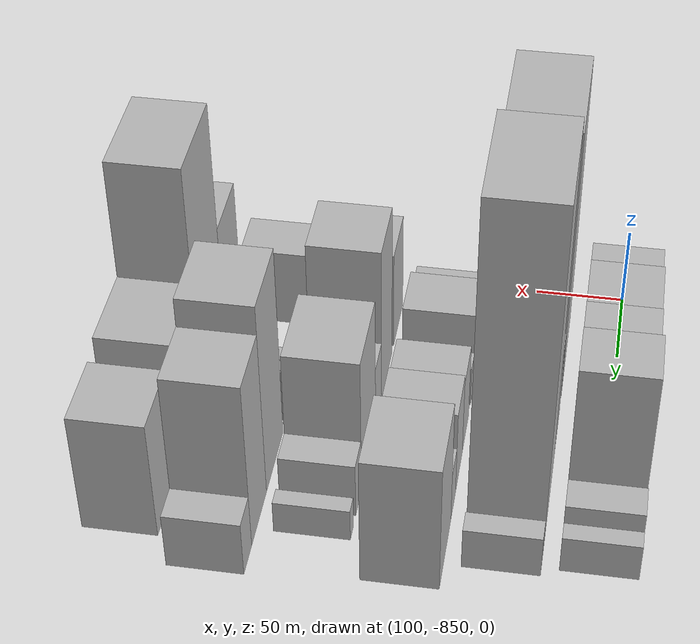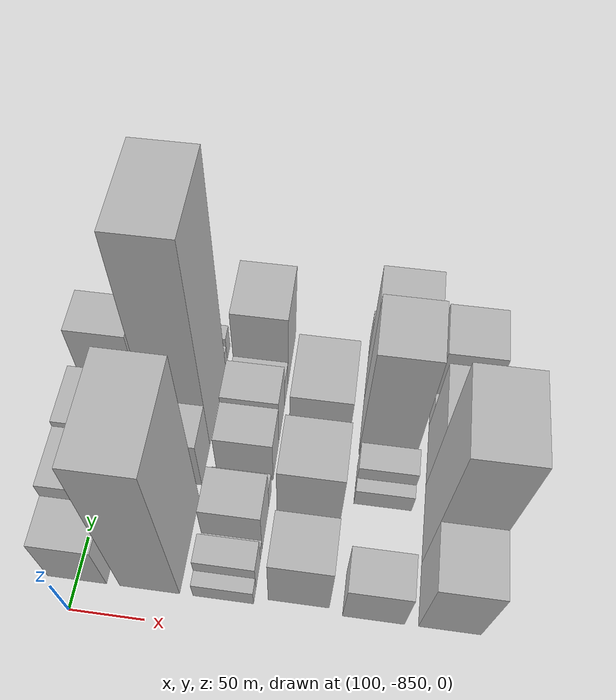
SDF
<sdf version="1.6">
 <world name="default">
  <model name="building_1">
   <static>1</static>
   <pose>100.0000 -813.4365 0 0.000000 0.000000 0.000000</pose>
   <link name="link">
    <pose>0 0 28.50 0 0 0</pose>
    <collision name="collision"><geometry><box><size>40.0000 33.1270 57.0000</size></box></geometry></collision>
    <visual name="visual">
     <cast_shadows>0</cast_shadows>
     <geometry><box><size>40.0000 33.1270 57.0000</size></box></geometry>
     <material>
      <script>
       <uri>model://HANNAS_wall/materials/scripts</uri>
       <uri>model://HANNAS_wall/materials/textures</uri>
       <name>vrc/HANNAS_wall</name>
      </script>
     </material>
    </visual>
   </link>
  </model>
  <model name="building_2">
   <static>1</static>
   <pose>100.0000 -776.1654 0 0.000000 0.000000 0.000000</pose>
   <link name="link">
    <pose>0 0 36.00 0 0 0</pose>
    <collision name="collision"><geometry><box><size>40.0000 41.4152 72.0000</size></box></geometry></collision>
    <visual name="visual">
     <cast_shadows>0</cast_shadows>
     <geometry><box><size>40.0000 41.4152 72.0000</size></box></geometry>
     <material>
      <script>
       <uri>model://HANNAS_wall/materials/scripts</uri>
       <uri>model://HANNAS_wall/materials/textures</uri>
       <name>vrc/HANNAS_wall</name>
      </script>
     </material>
    </visual>
   </link>
  </model>
  <model name="building_3">
   <static>1</static>
   <pose>100.0000 -734.5944 0 0.000000 0.000000 0.000000</pose>
   <link name="link">
    <pose>0 0 39.00 0 0 0</pose>
    <collision name="collision"><geometry><box><size>40.0000 41.7268 78.0000</size></box></geometry></collision>
    <visual name="visual">
     <cast_shadows>0</cast_shadows>
     <geometry><box><size>40.0000 41.7268 78.0000</size></box></geometry>
     <material>
      <script>
       <uri>model://HANNAS_wall/materials/scripts</uri>
       <uri>model://HANNAS_wall/materials/textures</uri>
       <name>vrc/HANNAS_wall</name>
      </script>
     </material>
    </visual>
   </link>
  </model>
  <model name="building_4">
   <static>1</static>
   <pose>100.0000 -688.7372 0 0.000000 0.000000 0.000000</pose>
   <link name="link">
    <pose>0 0 52.50 0 0 0</pose>
    <collision name="collision"><geometry><box><size>40.0000 31.9876 105.0000</size></box></geometry></collision>
    <visual name="visual">
     <cast_shadows>0</cast_shadows>
     <geometry><box><size>40.0000 31.9876 105.0000</size></box></geometry>
     <material>
      <script>
       <uri>model://HANNAS_wall/materials/scripts</uri>
       <uri>model://HANNAS_wall/materials/textures</uri>
       <name>vrc/HANNAS_wall</name>
      </script>
     </material>
    </visual>
   </link>
  </model>
  <model name="building_5">
   <static>1</static>
   <pose>100.0000 -657.4746 0 0.000000 0.000000 0.000000</pose>
   <link name="link">
    <pose>0 0 18.00 0 0 0</pose>
    <collision name="collision"><geometry><box><size>40.0000 18.5376 36.0000</size></box></geometry></collision>
    <visual name="visual">
     <cast_shadows>0</cast_shadows>
     <geometry><box><size>40.0000 18.5376 36.0000</size></box></geometry>
     <material>
      <script>
       <uri>model://HANNAS_wall/materials/scripts</uri>
       <uri>model://HANNAS_wall/materials/textures</uri>
       <name>vrc/HANNAS_wall</name>
      </script>
     </material>
    </visual>
   </link>
  </model>
  <model name="building_6">
   <static>1</static>
   <pose>100.0000 -643.0479 0 0.000000 0.000000 0.000000</pose>
   <link name="link">
    <pose>0 0 12.00 0 0 0</pose>
    <collision name="collision"><geometry><box><size>40.0000 10.3160 24.0000</size></box></geometry></collision>
    <visual name="visual">
     <cast_shadows>0</cast_shadows>
     <geometry><box><size>40.0000 10.3160 24.0000</size></box></geometry>
     <material>
      <script>
       <uri>model://HANNAS_wall/materials/scripts</uri>
       <uri>model://HANNAS_wall/materials/textures</uri>
       <name>vrc/HANNAS_wall</name>
      </script>
     </material>
    </visual>
   </link>
  </model>
  <model name="building_47">
   <static>1</static>
   <pose>149.0000 -795.7244 0 0.000000 0.000000 0.000000</pose>
   <link name="link">
    <pose>0 0 90.00 0 0 0</pose>
    <collision name="collision"><geometry><box><size>40.0000 68.5512 180.0000</size></box></geometry></collision>
    <visual name="visual">
     <cast_shadows>0</cast_shadows>
     <geometry><box><size>40.0000 68.5512 180.0000</size></box></geometry>
     <material>
      <script>
       <uri>model://HANNAS_wall/materials/scripts</uri>
       <uri>model://HANNAS_wall/materials/textures</uri>
       <name>vrc/HANNAS_wall</name>
      </script>
     </material>
    </visual>
   </link>
  </model>
  <model name="building_48">
   <static>1</static>
   <pose>149.0000 -735.6242 0 0.000000 0.000000 0.000000</pose>
   <link name="link">
    <pose>0 0 28.50 0 0 0</pose>
    <collision name="collision"><geometry><box><size>40.0000 31.6492 57.0000</size></box></geometry></collision>
    <visual name="visual">
     <cast_shadows>0</cast_shadows>
     <geometry><box><size>40.0000 31.6492 57.0000</size></box></geometry>
     <material>
      <script>
       <uri>model://HANNAS_wall/materials/scripts</uri>
       <uri>model://HANNAS_wall/materials/textures</uri>
       <name>vrc/HANNAS_wall</name>
      </script>
     </material>
    </visual>
   </link>
  </model>
  <model name="building_49">
   <static>1</static>
   <pose>149.0000 -686.6204 0 0.000000 0.000000 0.000000</pose>
   <link name="link">
    <pose>0 0 109.50 0 0 0</pose>
    <collision name="collision"><geometry><box><size>40.0000 66.3585 219.0000</size></box></geometry></collision>
    <visual name="visual">
     <cast_shadows>0</cast_shadows>
     <geometry><box><size>40.0000 66.3585 219.0000</size></box></geometry>
     <material>
      <script>
       <uri>model://HANNAS_wall/materials/scripts</uri>
       <uri>model://HANNAS_wall/materials/textures</uri>
       <name>vrc/HANNAS_wall</name>
      </script>
     </material>
    </visual>
   </link>
  </model>
  <model name="building_50">
   <static>1</static>
   <pose>149.0000 -649.4262 0 0.000000 0.000000 0.000000</pose>
   <link name="link">
    <pose>0 0 9.00 0 0 0</pose>
    <collision name="collision"><geometry><box><size>40.0000 8.0300 18.0000</size></box></geometry></collision>
    <visual name="visual">
     <cast_shadows>0</cast_shadows>
     <geometry><box><size>40.0000 8.0300 18.0000</size></box></geometry>
     <material>
      <script>
       <uri>model://HANNAS_wall/materials/scripts</uri>
       <uri>model://HANNAS_wall/materials/textures</uri>
       <name>vrc/HANNAS_wall</name>
      </script>
     </material>
    </visual>
   </link>
  </model>
  <model name="building_51">
   <static>1</static>
   <pose>149.0000 -639.1264 0 0.000000 0.000000 0.000000</pose>
   <link name="link">
    <pose>0 0 13.50 0 0 0</pose>
    <collision name="collision"><geometry><box><size>40.0000 12.5696 27.0000</size></box></geometry></collision>
    <visual name="visual">
     <cast_shadows>0</cast_shadows>
     <geometry><box><size>40.0000 12.5696 27.0000</size></box></geometry>
     <material>
      <script>
       <uri>model://HANNAS_wall/materials/scripts</uri>
       <uri>model://HANNAS_wall/materials/textures</uri>
       <name>vrc/HANNAS_wall</name>
      </script>
     </material>
    </visual>
   </link>
  </model>
  <model name="building_97">
   <static>1</static>
   <pose>198.0000 -824.8740 0 0.000000 0.000000 0.000000</pose>
   <link name="link">
    <pose>0 0 10.50 0 0 0</pose>
    <collision name="collision"><geometry><box><size>40.0000 10.2519 21.0000</size></box></geometry></collision>
    <visual name="visual">
     <cast_shadows>0</cast_shadows>
     <geometry><box><size>40.0000 10.2519 21.0000</size></box></geometry>
     <material>
      <script>
       <uri>model://HANNAS_wall/materials/scripts</uri>
       <uri>model://HANNAS_wall/materials/textures</uri>
       <name>vrc/HANNAS_wall</name>
      </script>
     </material>
    </visual>
   </link>
  </model>
  <model name="building_98">
   <static>1</static>
   <pose>198.0000 -810.1202 0 0.000000 0.000000 0.000000</pose>
   <link name="link">
    <pose>0 0 18.00 0 0 0</pose>
    <collision name="collision"><geometry><box><size>40.0000 19.2558 36.0000</size></box></geometry></collision>
    <visual name="visual">
     <cast_shadows>0</cast_shadows>
     <geometry><box><size>40.0000 19.2558 36.0000</size></box></geometry>
     <material>
      <script>
       <uri>model://HANNAS_wall/materials/scripts</uri>
       <uri>model://HANNAS_wall/materials/textures</uri>
       <name>vrc/HANNAS_wall</name>
      </script>
     </material>
    </visual>
   </link>
  </model>
  <model name="building_99">
   <static>1</static>
   <pose>198.0000 -796.7460 0 0.000000 0.000000 0.000000</pose>
   <link name="link">
    <pose>0 0 9.00 0 0 0</pose>
    <collision name="collision"><geometry><box><size>40.0000 7.4927 18.0000</size></box></geometry></collision>
    <visual name="visual">
     <cast_shadows>0</cast_shadows>
     <geometry><box><size>40.0000 7.4927 18.0000</size></box></geometry>
     <material>
      <script>
       <uri>model://HANNAS_wall/materials/scripts</uri>
       <uri>model://HANNAS_wall/materials/textures</uri>
       <name>vrc/HANNAS_wall</name>
      </script>
     </material>
    </visual>
   </link>
  </model>
  <model name="building_100">
   <static>1</static>
   <pose>198.0000 -777.3658 0 0.000000 0.000000 0.000000</pose>
   <link name="link">
    <pose>0 0 27.00 0 0 0</pose>
    <collision name="collision"><geometry><box><size>40.0000 31.2675 54.0000</size></box></geometry></collision>
    <visual name="visual">
     <cast_shadows>0</cast_shadows>
     <geometry><box><size>40.0000 31.2675 54.0000</size></box></geometry>
     <material>
      <script>
       <uri>model://HANNAS_wall/materials/scripts</uri>
       <uri>model://HANNAS_wall/materials/textures</uri>
       <name>vrc/HANNAS_wall</name>
      </script>
     </material>
    </visual>
   </link>
  </model>
  <model name="building_101">
   <static>1</static>
   <pose>198.0000 -755.3200 0 0.000000 0.000000 0.000000</pose>
   <link name="link">
    <pose>0 0 13.50 0 0 0</pose>
    <collision name="collision"><geometry><box><size>40.0000 12.8241 27.0000</size></box></geometry></collision>
    <visual name="visual">
     <cast_shadows>0</cast_shadows>
     <geometry><box><size>40.0000 12.8241 27.0000</size></box></geometry>
     <material>
      <script>
       <uri>model://HANNAS_wall/materials/scripts</uri>
       <uri>model://HANNAS_wall/materials/textures</uri>
       <name>vrc/HANNAS_wall</name>
      </script>
     </material>
    </visual>
   </link>
  </model>
  <model name="building_102">
   <static>1</static>
   <pose>198.0000 -726.4056 0 0.000000 0.000000 0.000000</pose>
   <link name="link">
    <pose>0 0 25.50 0 0 0</pose>
    <collision name="collision"><geometry><box><size>40.0000 29.0049 51.0000</size></box></geometry></collision>
    <visual name="visual">
     <cast_shadows>0</cast_shadows>
     <geometry><box><size>40.0000 29.0049 51.0000</size></box></geometry>
     <material>
      <script>
       <uri>model://HANNAS_wall/materials/scripts</uri>
       <uri>model://HANNAS_wall/materials/textures</uri>
       <name>vrc/HANNAS_wall</name>
      </script>
     </material>
    </visual>
   </link>
  </model>
  <model name="building_103">
   <static>1</static>
   <pose>198.0000 -697.0899 0 0.000000 0.000000 0.000000</pose>
   <link name="link">
    <pose>0 0 28.50 0 0 0</pose>
    <collision name="collision"><geometry><box><size>40.0000 29.6264 57.0000</size></box></geometry></collision>
    <visual name="visual">
     <cast_shadows>0</cast_shadows>
     <geometry><box><size>40.0000 29.6264 57.0000</size></box></geometry>
     <material>
      <script>
       <uri>model://HANNAS_wall/materials/scripts</uri>
       <uri>model://HANNAS_wall/materials/textures</uri>
       <name>vrc/HANNAS_wall</name>
      </script>
     </material>
    </visual>
   </link>
  </model>
  <model name="building_104">
   <static>1</static>
   <pose>198.0000 -672.5889 0 0.000000 0.000000 0.000000</pose>
   <link name="link">
    <pose>0 0 16.50 0 0 0</pose>
    <collision name="collision"><geometry><box><size>40.0000 19.3755 33.0000</size></box></geometry></collision>
    <visual name="visual">
     <cast_shadows>0</cast_shadows>
     <geometry><box><size>40.0000 19.3755 33.0000</size></box></geometry>
     <material>
      <script>
       <uri>model://HANNAS_wall/materials/scripts</uri>
       <uri>model://HANNAS_wall/materials/textures</uri>
       <name>vrc/HANNAS_wall</name>
      </script>
     </material>
    </visual>
   </link>
  </model>
  <model name="building_105">
   <static>1</static>
   <pose>198.0000 -639.7489 0 0.000000 0.000000 0.000000</pose>
   <link name="link">
    <pose>0 0 42.00 0 0 0</pose>
    <collision name="collision"><geometry><box><size>40.0000 46.3046 84.0000</size></box></geometry></collision>
    <visual name="visual">
     <cast_shadows>0</cast_shadows>
     <geometry><box><size>40.0000 46.3046 84.0000</size></box></geometry>
     <material>
      <script>
       <uri>model://HANNAS_wall/materials/scripts</uri>
       <uri>model://HANNAS_wall/materials/textures</uri>
       <name>vrc/HANNAS_wall</name>
      </script>
     </material>
    </visual>
   </link>
  </model>
  <model name="building_149">
   <static>1</static>
   <pose>247.0000 -808.0110 0 0.000000 0.000000 0.000000</pose>
   <link name="link">
    <pose>0 0 33.00 0 0 0</pose>
    <collision name="collision"><geometry><box><size>40.0000 35.9780 66.0000</size></box></geometry></collision>
    <visual name="visual">
     <cast_shadows>0</cast_shadows>
     <geometry><box><size>40.0000 35.9780 66.0000</size></box></geometry>
     <material>
      <script>
       <uri>model://HANNAS_wall/materials/scripts</uri>
       <uri>model://HANNAS_wall/materials/textures</uri>
       <name>vrc/HANNAS_wall</name>
      </script>
     </material>
    </visual>
   </link>
  </model>
  <model name="building_150">
   <static>1</static>
   <pose>247.0000 -764.7420 0 0.000000 0.000000 0.000000</pose>
   <link name="link">
    <pose>0 0 52.50 0 0 0</pose>
    <collision name="collision"><geometry><box><size>40.0000 38.5599 105.0000</size></box></geometry></collision>
    <visual name="visual">
     <cast_shadows>0</cast_shadows>
     <geometry><box><size>40.0000 38.5599 105.0000</size></box></geometry>
     <material>
      <script>
       <uri>model://HANNAS_wall/materials/scripts</uri>
       <uri>model://HANNAS_wall/materials/textures</uri>
       <name>vrc/HANNAS_wall</name>
      </script>
     </material>
    </visual>
   </link>
  </model>
  <model name="building_151">
   <static>1</static>
   <pose>247.0000 -734.9108 0 0.000000 0.000000 0.000000</pose>
   <link name="link">
    <pose>0 0 21.00 0 0 0</pose>
    <collision name="collision"><geometry><box><size>40.0000 21.1025 42.0000</size></box></geometry></collision>
    <visual name="visual">
     <cast_shadows>0</cast_shadows>
     <geometry><box><size>40.0000 21.1025 42.0000</size></box></geometry>
     <material>
      <script>
       <uri>model://HANNAS_wall/materials/scripts</uri>
       <uri>model://HANNAS_wall/materials/textures</uri>
       <name>vrc/HANNAS_wall</name>
      </script>
     </material>
    </visual>
   </link>
  </model>
  <model name="building_152">
   <static>1</static>
   <pose>247.0000 -700.5825 0 0.000000 0.000000 0.000000</pose>
   <link name="link">
    <pose>0 0 45.00 0 0 0</pose>
    <collision name="collision"><geometry><box><size>40.0000 47.5540 90.0000</size></box></geometry></collision>
    <visual name="visual">
     <cast_shadows>0</cast_shadows>
     <geometry><box><size>40.0000 47.5540 90.0000</size></box></geometry>
     <material>
      <script>
       <uri>model://HANNAS_wall/materials/scripts</uri>
       <uri>model://HANNAS_wall/materials/textures</uri>
       <name>vrc/HANNAS_wall</name>
      </script>
     </material>
    </visual>
   </link>
  </model>
  <model name="building_153">
   <static>1</static>
   <pose>247.0000 -667.6873 0 0.000000 0.000000 0.000000</pose>
   <link name="link">
    <pose>0 0 18.00 0 0 0</pose>
    <collision name="collision"><geometry><box><size>40.0000 18.2366 36.0000</size></box></geometry></collision>
    <visual name="visual">
     <cast_shadows>0</cast_shadows>
     <geometry><box><size>40.0000 18.2366 36.0000</size></box></geometry>
     <material>
      <script>
       <uri>model://HANNAS_wall/materials/scripts</uri>
       <uri>model://HANNAS_wall/materials/textures</uri>
       <name>vrc/HANNAS_wall</name>
      </script>
     </material>
    </visual>
   </link>
  </model>
  <model name="building_154">
   <static>1</static>
   <pose>247.0000 -646.6840 0 0.000000 0.000000 0.000000</pose>
   <link name="link">
    <pose>0 0 10.50 0 0 0</pose>
    <collision name="collision"><geometry><box><size>40.0000 9.7700 21.0000</size></box></geometry></collision>
    <visual name="visual">
     <cast_shadows>0</cast_shadows>
     <geometry><box><size>40.0000 9.7700 21.0000</size></box></geometry>
     <material>
      <script>
       <uri>model://HANNAS_wall/materials/scripts</uri>
       <uri>model://HANNAS_wall/materials/textures</uri>
       <name>vrc/HANNAS_wall</name>
      </script>
     </material>
    </visual>
   </link>
  </model>
  <model name="building_200">
   <static>1</static>
   <pose>296.0000 -815.3998 0 0.000000 0.000000 0.000000</pose>
   <link name="link">
    <pose>0 0 25.50 0 0 0</pose>
    <collision name="collision"><geometry><box><size>40.0000 29.2003 51.0000</size></box></geometry></collision>
    <visual name="visual">
     <cast_shadows>0</cast_shadows>
     <geometry><box><size>40.0000 29.2003 51.0000</size></box></geometry>
     <material>
      <script>
       <uri>model://HANNAS_wall/materials/scripts</uri>
       <uri>model://HANNAS_wall/materials/textures</uri>
       <name>vrc/HANNAS_wall</name>
      </script>
     </material>
    </visual>
   </link>
  </model>
  <model name="building_201">
   <static>1</static>
   <pose>296.0000 -745.9321 0 0.000000 0.000000 0.000000</pose>
   <link name="link">
    <pose>0 0 10.50 0 0 0</pose>
    <collision name="collision"><geometry><box><size>40.0000 9.9117 21.0000</size></box></geometry></collision>
    <visual name="visual">
     <cast_shadows>0</cast_shadows>
     <geometry><box><size>40.0000 9.9117 21.0000</size></box></geometry>
     <material>
      <script>
       <uri>model://HANNAS_wall/materials/scripts</uri>
       <uri>model://HANNAS_wall/materials/textures</uri>
       <name>vrc/HANNAS_wall</name>
      </script>
     </material>
    </visual>
   </link>
  </model>
  <model name="building_202">
   <static>1</static>
   <pose>296.0000 -731.1963 0 0.000000 0.000000 0.000000</pose>
   <link name="link">
    <pose>0 0 18.00 0 0 0</pose>
    <collision name="collision"><geometry><box><size>40.0000 19.5598 36.0000</size></box></geometry></collision>
    <visual name="visual">
     <cast_shadows>0</cast_shadows>
     <geometry><box><size>40.0000 19.5598 36.0000</size></box></geometry>
     <material>
      <script>
       <uri>model://HANNAS_wall/materials/scripts</uri>
       <uri>model://HANNAS_wall/materials/textures</uri>
       <name>vrc/HANNAS_wall</name>
      </script>
     </material>
    </visual>
   </link>
  </model>
  <model name="building_203">
   <static>1</static>
   <pose>296.0000 -690.1163 0 0.000000 0.000000 0.000000</pose>
   <link name="link">
    <pose>0 0 64.50 0 0 0</pose>
    <collision name="collision"><geometry><box><size>40.0000 44.6002 129.0000</size></box></geometry></collision>
    <visual name="visual">
     <cast_shadows>0</cast_shadows>
     <geometry><box><size>40.0000 44.6002 129.0000</size></box></geometry>
     <material>
      <script>
       <uri>model://HANNAS_wall/materials/scripts</uri>
       <uri>model://HANNAS_wall/materials/textures</uri>
       <name>vrc/HANNAS_wall</name>
      </script>
     </material>
    </visual>
   </link>
  </model>
  <model name="building_204">
   <static>1</static>
   <pose>296.0000 -649.0827 0 0.000000 0.000000 0.000000</pose>
   <link name="link">
    <pose>0 0 55.50 0 0 0</pose>
    <collision name="collision"><geometry><box><size>40.0000 37.4670 111.0000</size></box></geometry></collision>
    <visual name="visual">
     <cast_shadows>0</cast_shadows>
     <geometry><box><size>40.0000 37.4670 111.0000</size></box></geometry>
     <material>
      <script>
       <uri>model://HANNAS_wall/materials/scripts</uri>
       <uri>model://HANNAS_wall/materials/textures</uri>
       <name>vrc/HANNAS_wall</name>
      </script>
     </material>
    </visual>
   </link>
  </model>
  <model name="building_205">
   <static>1</static>
   <pose>296.0000 -620.8200 0 0.000000 0.000000 0.000000</pose>
   <link name="link">
    <pose>0 0 18.00 0 0 0</pose>
    <collision name="collision"><geometry><box><size>40.0000 19.0584 36.0000</size></box></geometry></collision>
    <visual name="visual">
     <cast_shadows>0</cast_shadows>
     <geometry><box><size>40.0000 19.0584 36.0000</size></box></geometry>
     <material>
      <script>
       <uri>model://HANNAS_wall/materials/scripts</uri>
       <uri>model://HANNAS_wall/materials/textures</uri>
       <name>vrc/HANNAS_wall</name>
      </script>
     </material>
    </visual>
   </link>
  </model>
  <model name="building_249">
   <static>1</static>
   <pose>345.0000 -808.8272 0 0.000000 0.000000 0.000000</pose>
   <link name="link">
    <pose>0 0 37.50 0 0 0</pose>
    <collision name="collision"><geometry><box><size>40.0000 42.3456 75.0000</size></box></geometry></collision>
    <visual name="visual">
     <cast_shadows>0</cast_shadows>
     <geometry><box><size>40.0000 42.3456 75.0000</size></box></geometry>
     <material>
      <script>
       <uri>model://HANNAS_wall/materials/scripts</uri>
       <uri>model://HANNAS_wall/materials/textures</uri>
       <name>vrc/HANNAS_wall</name>
      </script>
     </material>
    </visual>
   </link>
  </model>
  <model name="building_250">
   <static>1</static>
   <pose>345.0000 -758.9594 0 0.000000 0.000000 0.000000</pose>
   <link name="link">
    <pose>0 0 79.50 0 0 0</pose>
    <collision name="collision"><geometry><box><size>40.0000 57.3899 159.0000</size></box></geometry></collision>
    <visual name="visual">
     <cast_shadows>0</cast_shadows>
     <geometry><box><size>40.0000 57.3899 159.0000</size></box></geometry>
     <material>
      <script>
       <uri>model://HANNAS_wall/materials/scripts</uri>
       <uri>model://HANNAS_wall/materials/textures</uri>
       <name>vrc/HANNAS_wall</name>
      </script>
     </material>
    </visual>
   </link>
  </model>
  <model name="building_251">
   <static>1</static>
   <pose>345.0000 -706.2376 0 0.000000 0.000000 0.000000</pose>
   <link name="link">
    <pose>0 0 42.00 0 0 0</pose>
    <collision name="collision"><geometry><box><size>40.0000 48.0537 84.0000</size></box></geometry></collision>
    <visual name="visual">
     <cast_shadows>0</cast_shadows>
     <geometry><box><size>40.0000 48.0537 84.0000</size></box></geometry>
     <material>
      <script>
       <uri>model://HANNAS_wall/materials/scripts</uri>
       <uri>model://HANNAS_wall/materials/textures</uri>
       <name>vrc/HANNAS_wall</name>
      </script>
     </material>
    </visual>
   </link>
  </model>
  <model name="building_252">
   <static>1</static>
   <pose>345.0000 -676.4467 0 0.000000 0.000000 0.000000</pose>
   <link name="link">
    <pose>0 0 13.50 0 0 0</pose>
    <collision name="collision"><geometry><box><size>40.0000 11.5282 27.0000</size></box></geometry></collision>
    <visual name="visual">
     <cast_shadows>0</cast_shadows>
     <geometry><box><size>40.0000 11.5282 27.0000</size></box></geometry>
     <material>
      <script>
       <uri>model://HANNAS_wall/materials/scripts</uri>
       <uri>model://HANNAS_wall/materials/textures</uri>
       <name>vrc/HANNAS_wall</name>
      </script>
     </material>
    </visual>
   </link>
  </model>
  <model name="building_253">
   <static>1</static>
   <pose>345.0000 -650.2221 0 0.000000 0.000000 0.000000</pose>
   <link name="link">
    <pose>0 0 39.00 0 0 0</pose>
    <collision name="collision"><geometry><box><size>40.0000 40.9210 78.0000</size></box></geometry></collision>
    <visual name="visual">
     <cast_shadows>0</cast_shadows>
     <geometry><box><size>40.0000 40.9210 78.0000</size></box></geometry>
     <material>
      <script>
       <uri>model://HANNAS_wall/materials/scripts</uri>
       <uri>model://HANNAS_wall/materials/textures</uri>
       <name>vrc/HANNAS_wall</name>
      </script>
     </material>
    </visual>
   </link>
  </model>
 </world>
</sdf>
